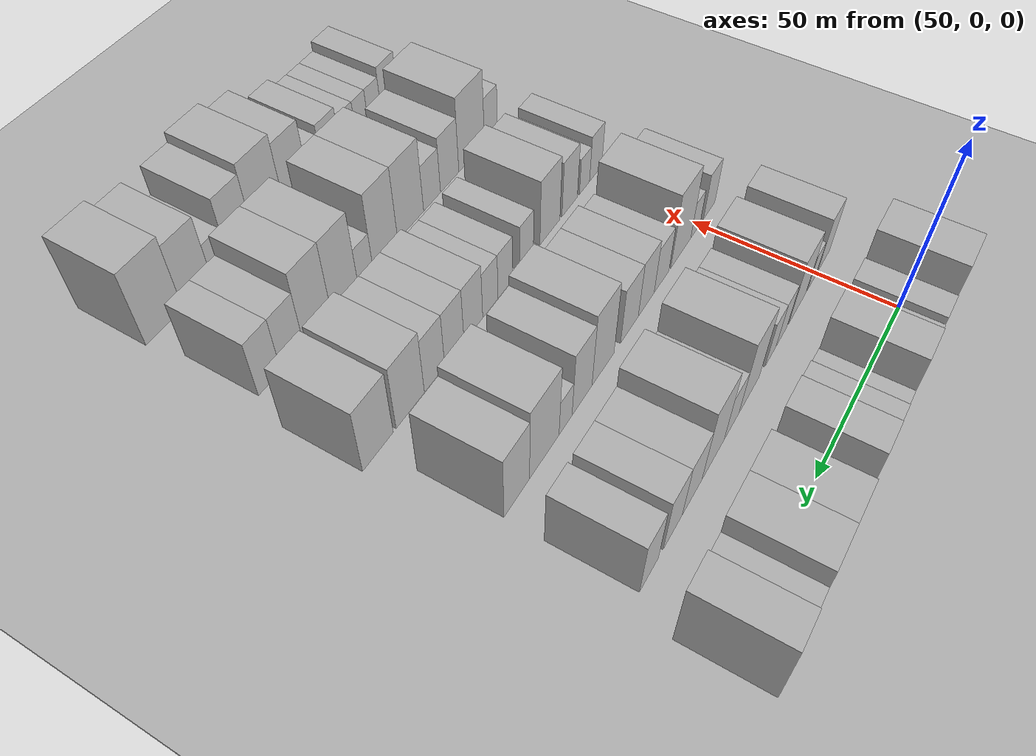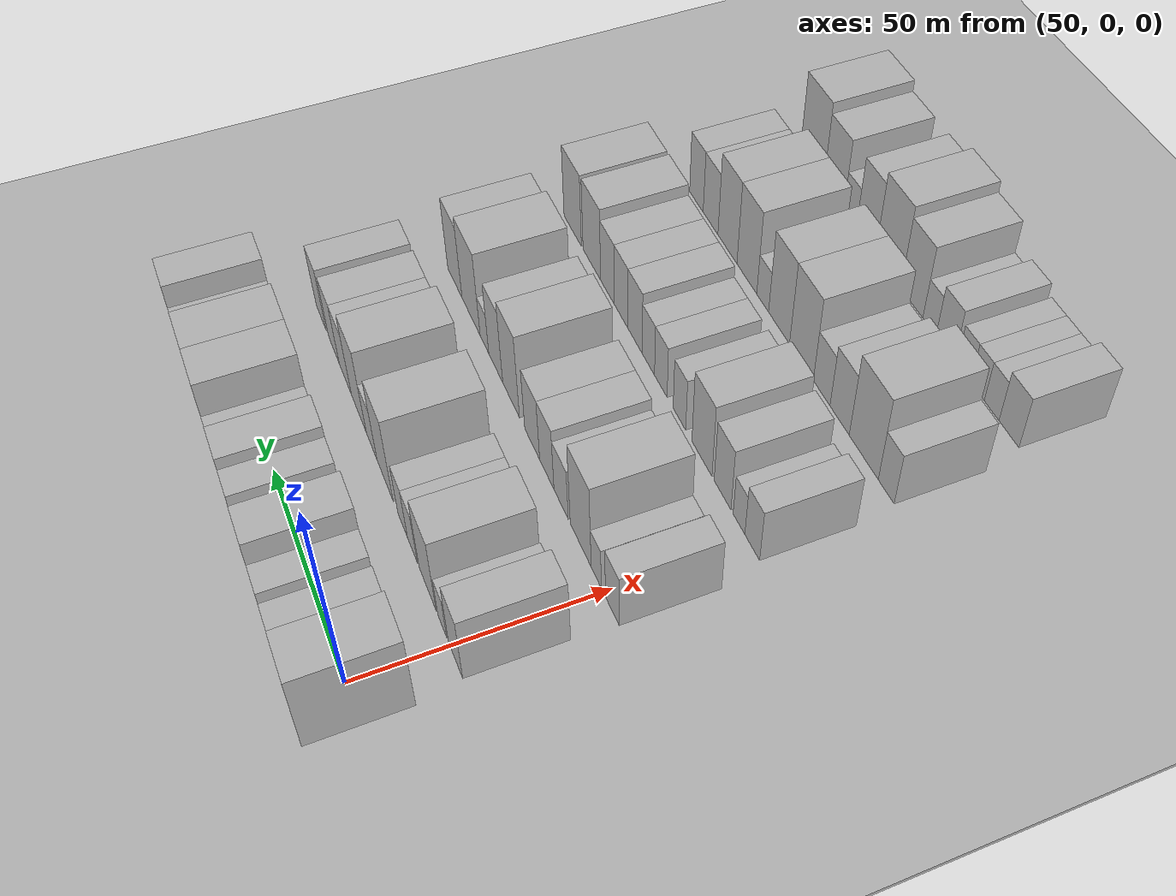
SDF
<sdf version="1.6">
 <world name="default">
  <include><name>ground_plane_1</name><uri>model://HANNAS_ground_plane</uri></include>
  <include>
   <name>ground_plane_2</name>
   <uri>model://HANNAS_ground_plane</uri>
   <pose>100 0 0  0 0 0</pose>
  </include>
  <model name="building_61">
   <static>1</static>
   <pose>50.0000 -3.9010 0 0.000000 0.000000 0.000000</pose>
   <link name="link">
    <pose>0 0 10.50 0 0 0</pose>
    <collision name="collision"><geometry><box><size>20.0000 10.4915 21.0000</size></box></geometry></collision>
    <visual name="visual">
     <cast_shadows>0</cast_shadows>
     <geometry><box><size>20.0000 10.4915 21.0000</size></box></geometry>
     <material>
      <script>
       <uri>model://HANNAS_wall/materials/scripts</uri>
       <uri>model://HANNAS_wall/materials/textures</uri>
       <name>vrc/HANNAS_wall</name>
      </script>
     </material>
    </visual>
   </link>
  </model>
  <model name="building_62">
   <static>1</static>
   <pose>50.0000 7.7243 0 0.000000 0.000000 0.000000</pose>
   <link name="link">
    <pose>0 0 7.50 0 0 0</pose>
    <collision name="collision"><geometry><box><size>20.0000 6.7590 15.0000</size></box></geometry></collision>
    <visual name="visual">
     <cast_shadows>0</cast_shadows>
     <geometry><box><size>20.0000 6.7590 15.0000</size></box></geometry>
     <material>
      <script>
       <uri>model://HANNAS_wall/materials/scripts</uri>
       <uri>model://HANNAS_wall/materials/textures</uri>
       <name>vrc/HANNAS_wall</name>
      </script>
     </material>
    </visual>
   </link>
  </model>
  <model name="building_63">
   <static>1</static>
   <pose>50.0000 16.3060 0 0.000000 0.000000 0.000000</pose>
   <link name="link">
    <pose>0 0 7.50 0 0 0</pose>
    <collision name="collision"><geometry><box><size>20.0000 6.4045 15.0000</size></box></geometry></collision>
    <visual name="visual">
     <cast_shadows>0</cast_shadows>
     <geometry><box><size>20.0000 6.4045 15.0000</size></box></geometry>
     <material>
      <script>
       <uri>model://HANNAS_wall/materials/scripts</uri>
       <uri>model://HANNAS_wall/materials/textures</uri>
       <name>vrc/HANNAS_wall</name>
      </script>
     </material>
    </visual>
   </link>
  </model>
  <model name="building_64">
   <static>1</static>
   <pose>50.0000 23.9120 0 0.000000 0.000000 0.000000</pose>
   <link name="link">
    <pose>0 0 10.50 0 0 0</pose>
    <collision name="collision"><geometry><box><size>20.0000 8.8074 21.0000</size></box></geometry></collision>
    <visual name="visual">
     <cast_shadows>0</cast_shadows>
     <geometry><box><size>20.0000 8.8074 21.0000</size></box></geometry>
     <material>
      <script>
       <uri>model://HANNAS_wall/materials/scripts</uri>
       <uri>model://HANNAS_wall/materials/textures</uri>
       <name>vrc/HANNAS_wall</name>
      </script>
     </material>
    </visual>
   </link>
  </model>
  <model name="building_65">
   <static>1</static>
   <pose>50.0000 32.2796 0 0.000000 0.000000 0.000000</pose>
   <link name="link">
    <pose>0 0 6.00 0 0 0</pose>
    <collision name="collision"><geometry><box><size>20.0000 5.9279 12.0000</size></box></geometry></collision>
    <visual name="visual">
     <cast_shadows>0</cast_shadows>
     <geometry><box><size>20.0000 5.9279 12.0000</size></box></geometry>
     <material>
      <script>
       <uri>model://HANNAS_wall/materials/scripts</uri>
       <uri>model://HANNAS_wall/materials/textures</uri>
       <name>vrc/HANNAS_wall</name>
      </script>
     </material>
    </visual>
   </link>
  </model>
  <model name="building_66">
   <static>1</static>
   <pose>50.0000 38.5099 0 0.000000 0.000000 0.000000</pose>
   <link name="link">
    <pose>0 0 7.50 0 0 0</pose>
    <collision name="collision"><geometry><box><size>20.0000 6.5327 15.0000</size></box></geometry></collision>
    <visual name="visual">
     <cast_shadows>0</cast_shadows>
     <geometry><box><size>20.0000 6.5327 15.0000</size></box></geometry>
     <material>
      <script>
       <uri>model://HANNAS_wall/materials/scripts</uri>
       <uri>model://HANNAS_wall/materials/textures</uri>
       <name>vrc/HANNAS_wall</name>
      </script>
     </material>
    </visual>
   </link>
  </model>
  <model name="building_67">
   <static>1</static>
   <pose>50.0000 45.8884 0 0.000000 0.000000 0.000000</pose>
   <link name="link">
    <pose>0 0 9.00 0 0 0</pose>
    <collision name="collision"><geometry><box><size>20.0000 8.2241 18.0000</size></box></geometry></collision>
    <visual name="visual">
     <cast_shadows>0</cast_shadows>
     <geometry><box><size>20.0000 8.2241 18.0000</size></box></geometry>
     <material>
      <script>
       <uri>model://HANNAS_wall/materials/scripts</uri>
       <uri>model://HANNAS_wall/materials/textures</uri>
       <name>vrc/HANNAS_wall</name>
      </script>
     </material>
    </visual>
   </link>
  </model>
  <model name="building_68">
   <static>1</static>
   <pose>50.0000 54.9763 0 0.000000 0.000000 0.000000</pose>
   <link name="link">
    <pose>0 0 6.00 0 0 0</pose>
    <collision name="collision"><geometry><box><size>20.0000 5.9517 12.0000</size></box></geometry></collision>
    <visual name="visual">
     <cast_shadows>0</cast_shadows>
     <geometry><box><size>20.0000 5.9517 12.0000</size></box></geometry>
     <material>
      <script>
       <uri>model://HANNAS_wall/materials/scripts</uri>
       <uri>model://HANNAS_wall/materials/textures</uri>
       <name>vrc/HANNAS_wall</name>
      </script>
     </material>
    </visual>
   </link>
  </model>
  <model name="building_69">
   <static>1</static>
   <pose>50.0000 62.8694 0 0.000000 0.000000 0.000000</pose>
   <link name="link">
    <pose>0 0 10.50 0 0 0</pose>
    <collision name="collision"><geometry><box><size>20.0000 9.8346 21.0000</size></box></geometry></collision>
    <visual name="visual">
     <cast_shadows>0</cast_shadows>
     <geometry><box><size>20.0000 9.8346 21.0000</size></box></geometry>
     <material>
      <script>
       <uri>model://HANNAS_wall/materials/scripts</uri>
       <uri>model://HANNAS_wall/materials/textures</uri>
       <name>vrc/HANNAS_wall</name>
      </script>
     </material>
    </visual>
   </link>
  </model>
  <model name="building_70">
   <static>1</static>
   <pose>50.0000 72.9231 0 0.000000 0.000000 0.000000</pose>
   <link name="link">
    <pose>0 0 10.50 0 0 0</pose>
    <collision name="collision"><geometry><box><size>20.0000 10.2727 21.0000</size></box></geometry></collision>
    <visual name="visual">
     <cast_shadows>0</cast_shadows>
     <geometry><box><size>20.0000 10.2727 21.0000</size></box></geometry>
     <material>
      <script>
       <uri>model://HANNAS_wall/materials/scripts</uri>
       <uri>model://HANNAS_wall/materials/textures</uri>
       <name>vrc/HANNAS_wall</name>
      </script>
     </material>
    </visual>
   </link>
  </model>
  <model name="building_71">
   <static>1</static>
   <pose>50.0000 81.6971 0 0.000000 0.000000 0.000000</pose>
   <link name="link">
    <pose>0 0 7.50 0 0 0</pose>
    <collision name="collision"><geometry><box><size>20.0000 7.2754 15.0000</size></box></geometry></collision>
    <visual name="visual">
     <cast_shadows>0</cast_shadows>
     <geometry><box><size>20.0000 7.2754 15.0000</size></box></geometry>
     <material>
      <script>
       <uri>model://HANNAS_wall/materials/scripts</uri>
       <uri>model://HANNAS_wall/materials/textures</uri>
       <name>vrc/HANNAS_wall</name>
      </script>
     </material>
    </visual>
   </link>
  </model>
  <model name="building_72">
   <static>1</static>
   <pose>50.0000 89.5781 0 0.000000 0.000000 0.000000</pose>
   <link name="link">
    <pose>0 0 10.50 0 0 0</pose>
    <collision name="collision"><geometry><box><size>20.0000 8.4865 21.0000</size></box></geometry></collision>
    <visual name="visual">
     <cast_shadows>0</cast_shadows>
     <geometry><box><size>20.0000 8.4865 21.0000</size></box></geometry>
     <material>
      <script>
       <uri>model://HANNAS_wall/materials/scripts</uri>
       <uri>model://HANNAS_wall/materials/textures</uri>
       <name>vrc/HANNAS_wall</name>
      </script>
     </material>
    </visual>
   </link>
  </model>
  <model name="building_178">
   <static>1</static>
   <pose>79.0000 -3.4270 0 0.000000 0.000000 0.000000</pose>
   <link name="link">
    <pose>0 0 9.00 0 0 0</pose>
    <collision name="collision"><geometry><box><size>20.0000 7.7500 18.0000</size></box></geometry></collision>
    <visual name="visual">
     <cast_shadows>0</cast_shadows>
     <geometry><box><size>20.0000 7.7500 18.0000</size></box></geometry>
     <material>
      <script>
       <uri>model://HANNAS_wall/materials/scripts</uri>
       <uri>model://HANNAS_wall/materials/textures</uri>
       <name>vrc/HANNAS_wall</name>
      </script>
     </material>
    </visual>
   </link>
  </model>
  <model name="building_179">
   <static>1</static>
   <pose>79.0000 3.9406 0 0.000000 0.000000 0.000000</pose>
   <link name="link">
    <pose>0 0 6.00 0 0 0</pose>
    <collision name="collision"><geometry><box><size>20.0000 4.9851 12.0000</size></box></geometry></collision>
    <visual name="visual">
     <cast_shadows>0</cast_shadows>
     <geometry><box><size>20.0000 4.9851 12.0000</size></box></geometry>
     <material>
      <script>
       <uri>model://HANNAS_wall/materials/scripts</uri>
       <uri>model://HANNAS_wall/materials/textures</uri>
       <name>vrc/HANNAS_wall</name>
      </script>
     </material>
    </visual>
   </link>
  </model>
  <model name="building_180">
   <static>1</static>
   <pose>79.0000 12.4589 0 0.000000 0.000000 0.000000</pose>
   <link name="link">
    <pose>0 0 10.50 0 0 0</pose>
    <collision name="collision"><geometry><box><size>20.0000 10.0514 21.0000</size></box></geometry></collision>
    <visual name="visual">
     <cast_shadows>0</cast_shadows>
     <geometry><box><size>20.0000 10.0514 21.0000</size></box></geometry>
     <material>
      <script>
       <uri>model://HANNAS_wall/materials/scripts</uri>
       <uri>model://HANNAS_wall/materials/textures</uri>
       <name>vrc/HANNAS_wall</name>
      </script>
     </material>
    </visual>
   </link>
  </model>
  <model name="building_181">
   <static>1</static>
   <pose>79.0000 21.5477 0 0.000000 0.000000 0.000000</pose>
   <link name="link">
    <pose>0 0 7.50 0 0 0</pose>
    <collision name="collision"><geometry><box><size>20.0000 6.1261 15.0000</size></box></geometry></collision>
    <visual name="visual">
     <cast_shadows>0</cast_shadows>
     <geometry><box><size>20.0000 6.1261 15.0000</size></box></geometry>
     <material>
      <script>
       <uri>model://HANNAS_wall/materials/scripts</uri>
       <uri>model://HANNAS_wall/materials/textures</uri>
       <name>vrc/HANNAS_wall</name>
      </script>
     </material>
    </visual>
   </link>
  </model>
  <model name="building_182">
   <static>1</static>
   <pose>79.0000 27.6333 0 0.000000 0.000000 0.000000</pose>
   <link name="link">
    <pose>0 0 7.50 0 0 0</pose>
    <collision name="collision"><geometry><box><size>20.0000 6.0452 15.0000</size></box></geometry></collision>
    <visual name="visual">
     <cast_shadows>0</cast_shadows>
     <geometry><box><size>20.0000 6.0452 15.0000</size></box></geometry>
     <material>
      <script>
       <uri>model://HANNAS_wall/materials/scripts</uri>
       <uri>model://HANNAS_wall/materials/textures</uri>
       <name>vrc/HANNAS_wall</name>
      </script>
     </material>
    </visual>
   </link>
  </model>
  <model name="building_183">
   <static>1</static>
   <pose>79.0000 38.9619 0 0.000000 0.000000 0.000000</pose>
   <link name="link">
    <pose>0 0 12.00 0 0 0</pose>
    <collision name="collision"><geometry><box><size>20.0000 10.6119 24.0000</size></box></geometry></collision>
    <visual name="visual">
     <cast_shadows>0</cast_shadows>
     <geometry><box><size>20.0000 10.6119 24.0000</size></box></geometry>
     <material>
      <script>
       <uri>model://HANNAS_wall/materials/scripts</uri>
       <uri>model://HANNAS_wall/materials/textures</uri>
       <name>vrc/HANNAS_wall</name>
      </script>
     </material>
    </visual>
   </link>
  </model>
  <model name="building_184">
   <static>1</static>
   <pose>79.0000 47.9116 0 0.000000 0.000000 0.000000</pose>
   <link name="link">
    <pose>0 0 7.50 0 0 0</pose>
    <collision name="collision"><geometry><box><size>20.0000 7.2875 15.0000</size></box></geometry></collision>
    <visual name="visual">
     <cast_shadows>0</cast_shadows>
     <geometry><box><size>20.0000 7.2875 15.0000</size></box></geometry>
     <material>
      <script>
       <uri>model://HANNAS_wall/materials/scripts</uri>
       <uri>model://HANNAS_wall/materials/textures</uri>
       <name>vrc/HANNAS_wall</name>
      </script>
     </material>
    </visual>
   </link>
  </model>
  <model name="building_185">
   <static>1</static>
   <pose>79.0000 56.8304 0 0.000000 0.000000 0.000000</pose>
   <link name="link">
    <pose>0 0 12.00 0 0 0</pose>
    <collision name="collision"><geometry><box><size>20.0000 10.5501 24.0000</size></box></geometry></collision>
    <visual name="visual">
     <cast_shadows>0</cast_shadows>
     <geometry><box><size>20.0000 10.5501 24.0000</size></box></geometry>
     <material>
      <script>
       <uri>model://HANNAS_wall/materials/scripts</uri>
       <uri>model://HANNAS_wall/materials/textures</uri>
       <name>vrc/HANNAS_wall</name>
      </script>
     </material>
    </visual>
   </link>
  </model>
  <model name="building_186">
   <static>1</static>
   <pose>79.0000 66.5549 0 0.000000 0.000000 0.000000</pose>
   <link name="link">
    <pose>0 0 9.00 0 0 0</pose>
    <collision name="collision"><geometry><box><size>20.0000 8.8989 18.0000</size></box></geometry></collision>
    <visual name="visual">
     <cast_shadows>0</cast_shadows>
     <geometry><box><size>20.0000 8.8989 18.0000</size></box></geometry>
     <material>
      <script>
       <uri>model://HANNAS_wall/materials/scripts</uri>
       <uri>model://HANNAS_wall/materials/textures</uri>
       <name>vrc/HANNAS_wall</name>
      </script>
     </material>
    </visual>
   </link>
  </model>
  <model name="building_187">
   <static>1</static>
   <pose>79.0000 75.1056 0 0.000000 0.000000 0.000000</pose>
   <link name="link">
    <pose>0 0 9.00 0 0 0</pose>
    <collision name="collision"><geometry><box><size>20.0000 8.2025 18.0000</size></box></geometry></collision>
    <visual name="visual">
     <cast_shadows>0</cast_shadows>
     <geometry><box><size>20.0000 8.2025 18.0000</size></box></geometry>
     <material>
      <script>
       <uri>model://HANNAS_wall/materials/scripts</uri>
       <uri>model://HANNAS_wall/materials/textures</uri>
       <name>vrc/HANNAS_wall</name>
      </script>
     </material>
    </visual>
   </link>
  </model>
  <model name="building_188">
   <static>1</static>
   <pose>79.0000 85.0935 0 0.000000 0.000000 0.000000</pose>
   <link name="link">
    <pose>0 0 9.00 0 0 0</pose>
    <collision name="collision"><geometry><box><size>20.0000 7.7735 18.0000</size></box></geometry></collision>
    <visual name="visual">
     <cast_shadows>0</cast_shadows>
     <geometry><box><size>20.0000 7.7735 18.0000</size></box></geometry>
     <material>
      <script>
       <uri>model://HANNAS_wall/materials/scripts</uri>
       <uri>model://HANNAS_wall/materials/textures</uri>
       <name>vrc/HANNAS_wall</name>
      </script>
     </material>
    </visual>
   </link>
  </model>
  <model name="building_296">
   <static>1</static>
   <pose>108.0000 -4.6606 0 0.000000 0.000000 0.000000</pose>
   <link name="link">
    <pose>0 0 7.50 0 0 0</pose>
    <collision name="collision"><geometry><box><size>20.0000 6.4673 15.0000</size></box></geometry></collision>
    <visual name="visual">
     <cast_shadows>0</cast_shadows>
     <geometry><box><size>20.0000 6.4673 15.0000</size></box></geometry>
     <material>
      <script>
       <uri>model://HANNAS_wall/materials/scripts</uri>
       <uri>model://HANNAS_wall/materials/textures</uri>
       <name>vrc/HANNAS_wall</name>
      </script>
     </material>
    </visual>
   </link>
  </model>
  <model name="building_297">
   <static>1</static>
   <pose>108.0000 3.0420 0 0.000000 0.000000 0.000000</pose>
   <link name="link">
    <pose>0 0 6.00 0 0 0</pose>
    <collision name="collision"><geometry><box><size>20.0000 4.9378 12.0000</size></box></geometry></collision>
    <visual name="visual">
     <cast_shadows>0</cast_shadows>
     <geometry><box><size>20.0000 4.9378 12.0000</size></box></geometry>
     <material>
      <script>
       <uri>model://HANNAS_wall/materials/scripts</uri>
       <uri>model://HANNAS_wall/materials/textures</uri>
       <name>vrc/HANNAS_wall</name>
      </script>
     </material>
    </visual>
   </link>
  </model>
  <model name="building_298">
   <static>1</static>
   <pose>108.0000 10.8004 0 0.000000 0.000000 0.000000</pose>
   <link name="link">
    <pose>0 0 12.00 0 0 0</pose>
    <collision name="collision"><geometry><box><size>20.0000 10.5790 24.0000</size></box></geometry></collision>
    <visual name="visual">
     <cast_shadows>0</cast_shadows>
     <geometry><box><size>20.0000 10.5790 24.0000</size></box></geometry>
     <material>
      <script>
       <uri>model://HANNAS_wall/materials/scripts</uri>
       <uri>model://HANNAS_wall/materials/textures</uri>
       <name>vrc/HANNAS_wall</name>
      </script>
     </material>
    </visual>
   </link>
  </model>
  <model name="building_299">
   <static>1</static>
   <pose>108.0000 20.8381 0 0.000000 0.000000 0.000000</pose>
   <link name="link">
    <pose>0 0 7.50 0 0 0</pose>
    <collision name="collision"><geometry><box><size>20.0000 7.4964 15.0000</size></box></geometry></collision>
    <visual name="visual">
     <cast_shadows>0</cast_shadows>
     <geometry><box><size>20.0000 7.4964 15.0000</size></box></geometry>
     <material>
      <script>
       <uri>model://HANNAS_wall/materials/scripts</uri>
       <uri>model://HANNAS_wall/materials/textures</uri>
       <name>vrc/HANNAS_wall</name>
      </script>
     </material>
    </visual>
   </link>
  </model>
  <model name="building_300">
   <static>1</static>
   <pose>108.0000 28.4710 0 0.000000 0.000000 0.000000</pose>
   <link name="link">
    <pose>0 0 9.00 0 0 0</pose>
    <collision name="collision"><geometry><box><size>20.0000 7.7693 18.0000</size></box></geometry></collision>
    <visual name="visual">
     <cast_shadows>0</cast_shadows>
     <geometry><box><size>20.0000 7.7693 18.0000</size></box></geometry>
     <material>
      <script>
       <uri>model://HANNAS_wall/materials/scripts</uri>
       <uri>model://HANNAS_wall/materials/textures</uri>
       <name>vrc/HANNAS_wall</name>
      </script>
     </material>
    </visual>
   </link>
  </model>
  <model name="building_301">
   <static>1</static>
   <pose>108.0000 36.5383 0 0.000000 0.000000 0.000000</pose>
   <link name="link">
    <pose>0 0 9.00 0 0 0</pose>
    <collision name="collision"><geometry><box><size>20.0000 8.3653 18.0000</size></box></geometry></collision>
    <visual name="visual">
     <cast_shadows>0</cast_shadows>
     <geometry><box><size>20.0000 8.3653 18.0000</size></box></geometry>
     <material>
      <script>
       <uri>model://HANNAS_wall/materials/scripts</uri>
       <uri>model://HANNAS_wall/materials/textures</uri>
       <name>vrc/HANNAS_wall</name>
      </script>
     </material>
    </visual>
   </link>
  </model>
  <model name="building_302">
   <static>1</static>
   <pose>108.0000 48.6522 0 0.000000 0.000000 0.000000</pose>
   <link name="link">
    <pose>0 0 12.00 0 0 0</pose>
    <collision name="collision"><geometry><box><size>20.0000 9.8624 24.0000</size></box></geometry></collision>
    <visual name="visual">
     <cast_shadows>0</cast_shadows>
     <geometry><box><size>20.0000 9.8624 24.0000</size></box></geometry>
     <material>
      <script>
       <uri>model://HANNAS_wall/materials/scripts</uri>
       <uri>model://HANNAS_wall/materials/textures</uri>
       <name>vrc/HANNAS_wall</name>
      </script>
     </material>
    </visual>
   </link>
  </model>
  <model name="building_303">
   <static>1</static>
   <pose>108.0000 57.8379 0 0.000000 0.000000 0.000000</pose>
   <link name="link">
    <pose>0 0 10.50 0 0 0</pose>
    <collision name="collision"><geometry><box><size>20.0000 8.5090 21.0000</size></box></geometry></collision>
    <visual name="visual">
     <cast_shadows>0</cast_shadows>
     <geometry><box><size>20.0000 8.5090 21.0000</size></box></geometry>
     <material>
      <script>
       <uri>model://HANNAS_wall/materials/scripts</uri>
       <uri>model://HANNAS_wall/materials/textures</uri>
       <name>vrc/HANNAS_wall</name>
      </script>
     </material>
    </visual>
   </link>
  </model>
  <model name="building_304">
   <static>1</static>
   <pose>108.0000 64.7848 0 0.000000 0.000000 0.000000</pose>
   <link name="link">
    <pose>0 0 6.00 0 0 0</pose>
    <collision name="collision"><geometry><box><size>20.0000 5.3848 12.0000</size></box></geometry></collision>
    <visual name="visual">
     <cast_shadows>0</cast_shadows>
     <geometry><box><size>20.0000 5.3848 12.0000</size></box></geometry>
     <material>
      <script>
       <uri>model://HANNAS_wall/materials/scripts</uri>
       <uri>model://HANNAS_wall/materials/textures</uri>
       <name>vrc/HANNAS_wall</name>
      </script>
     </material>
    </visual>
   </link>
  </model>
  <model name="building_305">
   <static>1</static>
   <pose>108.0000 73.3224 0 0.000000 0.000000 0.000000</pose>
   <link name="link">
    <pose>0 0 12.00 0 0 0</pose>
    <collision name="collision"><geometry><box><size>20.0000 11.6905 24.0000</size></box></geometry></collision>
    <visual name="visual">
     <cast_shadows>0</cast_shadows>
     <geometry><box><size>20.0000 11.6905 24.0000</size></box></geometry>
     <material>
      <script>
       <uri>model://HANNAS_wall/materials/scripts</uri>
       <uri>model://HANNAS_wall/materials/textures</uri>
       <name>vrc/HANNAS_wall</name>
      </script>
     </material>
    </visual>
   </link>
  </model>
  <model name="building_306">
   <static>1</static>
   <pose>108.0000 83.9621 0 0.000000 0.000000 0.000000</pose>
   <link name="link">
    <pose>0 0 10.50 0 0 0</pose>
    <collision name="collision"><geometry><box><size>20.0000 9.5888 21.0000</size></box></geometry></collision>
    <visual name="visual">
     <cast_shadows>0</cast_shadows>
     <geometry><box><size>20.0000 9.5888 21.0000</size></box></geometry>
     <material>
      <script>
       <uri>model://HANNAS_wall/materials/scripts</uri>
       <uri>model://HANNAS_wall/materials/textures</uri>
       <name>vrc/HANNAS_wall</name>
      </script>
     </material>
    </visual>
   </link>
  </model>
  <model name="building_409">
   <static>1</static>
   <pose>137.0000 -1.8478 0 0.000000 0.000000 0.000000</pose>
   <link name="link">
    <pose>0 0 7.50 0 0 0</pose>
    <collision name="collision"><geometry><box><size>20.0000 6.2753 15.0000</size></box></geometry></collision>
    <visual name="visual">
     <cast_shadows>0</cast_shadows>
     <geometry><box><size>20.0000 6.2753 15.0000</size></box></geometry>
     <material>
      <script>
       <uri>model://HANNAS_wall/materials/scripts</uri>
       <uri>model://HANNAS_wall/materials/textures</uri>
       <name>vrc/HANNAS_wall</name>
      </script>
     </material>
    </visual>
   </link>
  </model>
  <model name="building_410">
   <static>1</static>
   <pose>137.0000 3.8283 0 0.000000 0.000000 0.000000</pose>
   <link name="link">
    <pose>0 0 6.00 0 0 0</pose>
    <collision name="collision"><geometry><box><size>20.0000 5.0770 12.0000</size></box></geometry></collision>
    <visual name="visual">
     <cast_shadows>0</cast_shadows>
     <geometry><box><size>20.0000 5.0770 12.0000</size></box></geometry>
     <material>
      <script>
       <uri>model://HANNAS_wall/materials/scripts</uri>
       <uri>model://HANNAS_wall/materials/textures</uri>
       <name>vrc/HANNAS_wall</name>
      </script>
     </material>
    </visual>
   </link>
  </model>
  <model name="building_411">
   <static>1</static>
   <pose>137.0000 11.1254 0 0.000000 0.000000 0.000000</pose>
   <link name="link">
    <pose>0 0 9.00 0 0 0</pose>
    <collision name="collision"><geometry><box><size>20.0000 7.5172 18.0000</size></box></geometry></collision>
    <visual name="visual">
     <cast_shadows>0</cast_shadows>
     <geometry><box><size>20.0000 7.5172 18.0000</size></box></geometry>
     <material>
      <script>
       <uri>model://HANNAS_wall/materials/scripts</uri>
       <uri>model://HANNAS_wall/materials/textures</uri>
       <name>vrc/HANNAS_wall</name>
      </script>
     </material>
    </visual>
   </link>
  </model>
  <model name="building_412">
   <static>1</static>
   <pose>137.0000 20.5613 0 0.000000 0.000000 0.000000</pose>
   <link name="link">
    <pose>0 0 10.50 0 0 0</pose>
    <collision name="collision"><geometry><box><size>20.0000 9.3547 21.0000</size></box></geometry></collision>
    <visual name="visual">
     <cast_shadows>0</cast_shadows>
     <geometry><box><size>20.0000 9.3547 21.0000</size></box></geometry>
     <material>
      <script>
       <uri>model://HANNAS_wall/materials/scripts</uri>
       <uri>model://HANNAS_wall/materials/textures</uri>
       <name>vrc/HANNAS_wall</name>
      </script>
     </material>
    </visual>
   </link>
  </model>
  <model name="building_413">
   <static>1</static>
   <pose>137.0000 31.2797 0 0.000000 0.000000 0.000000</pose>
   <link name="link">
    <pose>0 0 7.50 0 0 0</pose>
    <collision name="collision"><geometry><box><size>20.0000 6.0819 15.0000</size></box></geometry></collision>
    <visual name="visual">
     <cast_shadows>0</cast_shadows>
     <geometry><box><size>20.0000 6.0819 15.0000</size></box></geometry>
     <material>
      <script>
       <uri>model://HANNAS_wall/materials/scripts</uri>
       <uri>model://HANNAS_wall/materials/textures</uri>
       <name>vrc/HANNAS_wall</name>
      </script>
     </material>
    </visual>
   </link>
  </model>
  <model name="building_414">
   <static>1</static>
   <pose>137.0000 40.4959 0 0.000000 0.000000 0.000000</pose>
   <link name="link">
    <pose>0 0 7.50 0 0 0</pose>
    <collision name="collision"><geometry><box><size>20.0000 6.3505 15.0000</size></box></geometry></collision>
    <visual name="visual">
     <cast_shadows>0</cast_shadows>
     <geometry><box><size>20.0000 6.3505 15.0000</size></box></geometry>
     <material>
      <script>
       <uri>model://HANNAS_wall/materials/scripts</uri>
       <uri>model://HANNAS_wall/materials/textures</uri>
       <name>vrc/HANNAS_wall</name>
      </script>
     </material>
    </visual>
   </link>
  </model>
  <model name="building_415">
   <static>1</static>
   <pose>137.0000 46.8543 0 0.000000 0.000000 0.000000</pose>
   <link name="link">
    <pose>0 0 7.50 0 0 0</pose>
    <collision name="collision"><geometry><box><size>20.0000 6.3665 15.0000</size></box></geometry></collision>
    <visual name="visual">
     <cast_shadows>0</cast_shadows>
     <geometry><box><size>20.0000 6.3665 15.0000</size></box></geometry>
     <material>
      <script>
       <uri>model://HANNAS_wall/materials/scripts</uri>
       <uri>model://HANNAS_wall/materials/textures</uri>
       <name>vrc/HANNAS_wall</name>
      </script>
     </material>
    </visual>
   </link>
  </model>
  <model name="building_416">
   <static>1</static>
   <pose>137.0000 53.8224 0 0.000000 0.000000 0.000000</pose>
   <link name="link">
    <pose>0 0 9.00 0 0 0</pose>
    <collision name="collision"><geometry><box><size>20.0000 7.5697 18.0000</size></box></geometry></collision>
    <visual name="visual">
     <cast_shadows>0</cast_shadows>
     <geometry><box><size>20.0000 7.5697 18.0000</size></box></geometry>
     <material>
      <script>
       <uri>model://HANNAS_wall/materials/scripts</uri>
       <uri>model://HANNAS_wall/materials/textures</uri>
       <name>vrc/HANNAS_wall</name>
      </script>
     </material>
    </visual>
   </link>
  </model>
  <model name="building_417">
   <static>1</static>
   <pose>137.0000 61.3612 0 0.000000 0.000000 0.000000</pose>
   <link name="link">
    <pose>0 0 9.00 0 0 0</pose>
    <collision name="collision"><geometry><box><size>20.0000 7.5079 18.0000</size></box></geometry></collision>
    <visual name="visual">
     <cast_shadows>0</cast_shadows>
     <geometry><box><size>20.0000 7.5079 18.0000</size></box></geometry>
     <material>
      <script>
       <uri>model://HANNAS_wall/materials/scripts</uri>
       <uri>model://HANNAS_wall/materials/textures</uri>
       <name>vrc/HANNAS_wall</name>
      </script>
     </material>
    </visual>
   </link>
  </model>
  <model name="building_418">
   <static>1</static>
   <pose>137.0000 68.9557 0 0.000000 0.000000 0.000000</pose>
   <link name="link">
    <pose>0 0 9.00 0 0 0</pose>
    <collision name="collision"><geometry><box><size>20.0000 7.6810 18.0000</size></box></geometry></collision>
    <visual name="visual">
     <cast_shadows>0</cast_shadows>
     <geometry><box><size>20.0000 7.6810 18.0000</size></box></geometry>
     <material>
      <script>
       <uri>model://HANNAS_wall/materials/scripts</uri>
       <uri>model://HANNAS_wall/materials/textures</uri>
       <name>vrc/HANNAS_wall</name>
      </script>
     </material>
    </visual>
   </link>
  </model>
  <model name="building_419">
   <static>1</static>
   <pose>137.0000 77.9057 0 0.000000 0.000000 0.000000</pose>
   <link name="link">
    <pose>0 0 10.50 0 0 0</pose>
    <collision name="collision"><geometry><box><size>20.0000 10.2191 21.0000</size></box></geometry></collision>
    <visual name="visual">
     <cast_shadows>0</cast_shadows>
     <geometry><box><size>20.0000 10.2191 21.0000</size></box></geometry>
     <material>
      <script>
       <uri>model://HANNAS_wall/materials/scripts</uri>
       <uri>model://HANNAS_wall/materials/textures</uri>
       <name>vrc/HANNAS_wall</name>
      </script>
     </material>
    </visual>
   </link>
  </model>
  <model name="building_420">
   <static>1</static>
   <pose>137.0000 89.2529 0 0.000000 0.000000 0.000000</pose>
   <link name="link">
    <pose>0 0 10.50 0 0 0</pose>
    <collision name="collision"><geometry><box><size>20.0000 10.4754 21.0000</size></box></geometry></collision>
    <visual name="visual">
     <cast_shadows>0</cast_shadows>
     <geometry><box><size>20.0000 10.4754 21.0000</size></box></geometry>
     <material>
      <script>
       <uri>model://HANNAS_wall/materials/scripts</uri>
       <uri>model://HANNAS_wall/materials/textures</uri>
       <name>vrc/HANNAS_wall</name>
      </script>
     </material>
    </visual>
   </link>
  </model>
  <model name="building_522">
   <static>1</static>
   <pose>166.0000 -0.1412 0 0.000000 0.000000 0.000000</pose>
   <link name="link">
    <pose>0 0 7.50 0 0 0</pose>
    <collision name="collision"><geometry><box><size>20.0000 6.2050 15.0000</size></box></geometry></collision>
    <visual name="visual">
     <cast_shadows>0</cast_shadows>
     <geometry><box><size>20.0000 6.2050 15.0000</size></box></geometry>
     <material>
      <script>
       <uri>model://HANNAS_wall/materials/scripts</uri>
       <uri>model://HANNAS_wall/materials/textures</uri>
       <name>vrc/HANNAS_wall</name>
      </script>
     </material>
    </visual>
   </link>
  </model>
  <model name="building_523">
   <static>1</static>
   <pose>166.0000 8.8493 0 0.000000 0.000000 0.000000</pose>
   <link name="link">
    <pose>0 0 12.00 0 0 0</pose>
    <collision name="collision"><geometry><box><size>20.0000 11.7760 24.0000</size></box></geometry></collision>
    <visual name="visual">
     <cast_shadows>0</cast_shadows>
     <geometry><box><size>20.0000 11.7760 24.0000</size></box></geometry>
     <material>
      <script>
       <uri>model://HANNAS_wall/materials/scripts</uri>
       <uri>model://HANNAS_wall/materials/textures</uri>
       <name>vrc/HANNAS_wall</name>
      </script>
     </material>
    </visual>
   </link>
  </model>
  <model name="building_524">
   <static>1</static>
   <pose>166.0000 18.7882 0 0.000000 0.000000 0.000000</pose>
   <link name="link">
    <pose>0 0 9.00 0 0 0</pose>
    <collision name="collision"><geometry><box><size>20.0000 8.1018 18.0000</size></box></geometry></collision>
    <visual name="visual">
     <cast_shadows>0</cast_shadows>
     <geometry><box><size>20.0000 8.1018 18.0000</size></box></geometry>
     <material>
      <script>
       <uri>model://HANNAS_wall/materials/scripts</uri>
       <uri>model://HANNAS_wall/materials/textures</uri>
       <name>vrc/HANNAS_wall</name>
      </script>
     </material>
    </visual>
   </link>
  </model>
  <model name="building_525">
   <static>1</static>
   <pose>166.0000 26.4673 0 0.000000 0.000000 0.000000</pose>
   <link name="link">
    <pose>0 0 7.50 0 0 0</pose>
    <collision name="collision"><geometry><box><size>20.0000 7.2564 15.0000</size></box></geometry></collision>
    <visual name="visual">
     <cast_shadows>0</cast_shadows>
     <geometry><box><size>20.0000 7.2564 15.0000</size></box></geometry>
     <material>
      <script>
       <uri>model://HANNAS_wall/materials/scripts</uri>
       <uri>model://HANNAS_wall/materials/textures</uri>
       <name>vrc/HANNAS_wall</name>
      </script>
     </material>
    </visual>
   </link>
  </model>
  <model name="building_526">
   <static>1</static>
   <pose>166.0000 35.4468 0 0.000000 0.000000 0.000000</pose>
   <link name="link">
    <pose>0 0 12.00 0 0 0</pose>
    <collision name="collision"><geometry><box><size>20.0000 10.7025 24.0000</size></box></geometry></collision>
    <visual name="visual">
     <cast_shadows>0</cast_shadows>
     <geometry><box><size>20.0000 10.7025 24.0000</size></box></geometry>
     <material>
      <script>
       <uri>model://HANNAS_wall/materials/scripts</uri>
       <uri>model://HANNAS_wall/materials/textures</uri>
       <name>vrc/HANNAS_wall</name>
      </script>
     </material>
    </visual>
   </link>
  </model>
  <model name="building_527">
   <static>1</static>
   <pose>166.0000 45.7075 0 0.000000 0.000000 0.000000</pose>
   <link name="link">
    <pose>0 0 12.00 0 0 0</pose>
    <collision name="collision"><geometry><box><size>20.0000 9.8189 24.0000</size></box></geometry></collision>
    <visual name="visual">
     <cast_shadows>0</cast_shadows>
     <geometry><box><size>20.0000 9.8189 24.0000</size></box></geometry>
     <material>
      <script>
       <uri>model://HANNAS_wall/materials/scripts</uri>
       <uri>model://HANNAS_wall/materials/textures</uri>
       <name>vrc/HANNAS_wall</name>
      </script>
     </material>
    </visual>
   </link>
  </model>
  <model name="building_528">
   <static>1</static>
   <pose>166.0000 53.4572 0 0.000000 0.000000 0.000000</pose>
   <link name="link">
    <pose>0 0 6.00 0 0 0</pose>
    <collision name="collision"><geometry><box><size>20.0000 5.6805 12.0000</size></box></geometry></collision>
    <visual name="visual">
     <cast_shadows>0</cast_shadows>
     <geometry><box><size>20.0000 5.6805 12.0000</size></box></geometry>
     <material>
      <script>
       <uri>model://HANNAS_wall/materials/scripts</uri>
       <uri>model://HANNAS_wall/materials/textures</uri>
       <name>vrc/HANNAS_wall</name>
      </script>
     </material>
    </visual>
   </link>
  </model>
  <model name="building_529">
   <static>1</static>
   <pose>166.0000 61.1979 0 0.000000 0.000000 0.000000</pose>
   <link name="link">
    <pose>0 0 12.00 0 0 0</pose>
    <collision name="collision"><geometry><box><size>20.0000 9.8009 24.0000</size></box></geometry></collision>
    <visual name="visual">
     <cast_shadows>0</cast_shadows>
     <geometry><box><size>20.0000 9.8009 24.0000</size></box></geometry>
     <material>
      <script>
       <uri>model://HANNAS_wall/materials/scripts</uri>
       <uri>model://HANNAS_wall/materials/textures</uri>
       <name>vrc/HANNAS_wall</name>
      </script>
     </material>
    </visual>
   </link>
  </model>
  <model name="building_530">
   <static>1</static>
   <pose>166.0000 70.9834 0 0.000000 0.000000 0.000000</pose>
   <link name="link">
    <pose>0 0 12.00 0 0 0</pose>
    <collision name="collision"><geometry><box><size>20.0000 9.7701 24.0000</size></box></geometry></collision>
    <visual name="visual">
     <cast_shadows>0</cast_shadows>
     <geometry><box><size>20.0000 9.7701 24.0000</size></box></geometry>
     <material>
      <script>
       <uri>model://HANNAS_wall/materials/scripts</uri>
       <uri>model://HANNAS_wall/materials/textures</uri>
       <name>vrc/HANNAS_wall</name>
      </script>
     </material>
    </visual>
   </link>
  </model>
  <model name="building_531">
   <static>1</static>
   <pose>166.0000 79.7733 0 0.000000 0.000000 0.000000</pose>
   <link name="link">
    <pose>0 0 9.00 0 0 0</pose>
    <collision name="collision"><geometry><box><size>20.0000 7.8098 18.0000</size></box></geometry></collision>
    <visual name="visual">
     <cast_shadows>0</cast_shadows>
     <geometry><box><size>20.0000 7.8098 18.0000</size></box></geometry>
     <material>
      <script>
       <uri>model://HANNAS_wall/materials/scripts</uri>
       <uri>model://HANNAS_wall/materials/textures</uri>
       <name>vrc/HANNAS_wall</name>
      </script>
     </material>
    </visual>
   </link>
  </model>
  <model name="building_532">
   <static>1</static>
   <pose>166.0000 87.3550 0 0.000000 0.000000 0.000000</pose>
   <link name="link">
    <pose>0 0 9.00 0 0 0</pose>
    <collision name="collision"><geometry><box><size>20.0000 7.3536 18.0000</size></box></geometry></collision>
    <visual name="visual">
     <cast_shadows>0</cast_shadows>
     <geometry><box><size>20.0000 7.3536 18.0000</size></box></geometry>
     <material>
      <script>
       <uri>model://HANNAS_wall/materials/scripts</uri>
       <uri>model://HANNAS_wall/materials/textures</uri>
       <name>vrc/HANNAS_wall</name>
      </script>
     </material>
    </visual>
   </link>
  </model>
  <model name="building_638">
   <static>1</static>
   <pose>195.0000 2.9607 0 0.000000 0.000000 0.000000</pose>
   <link name="link">
    <pose>0 0 7.50 0 0 0</pose>
    <collision name="collision"><geometry><box><size>20.0000 7.3193 15.0000</size></box></geometry></collision>
    <visual name="visual">
     <cast_shadows>0</cast_shadows>
     <geometry><box><size>20.0000 7.3193 15.0000</size></box></geometry>
     <material>
      <script>
       <uri>model://HANNAS_wall/materials/scripts</uri>
       <uri>model://HANNAS_wall/materials/textures</uri>
       <name>vrc/HANNAS_wall</name>
      </script>
     </material>
    </visual>
   </link>
  </model>
  <model name="building_639">
   <static>1</static>
   <pose>195.0000 9.3924 0 0.000000 0.000000 0.000000</pose>
   <link name="link">
    <pose>0 0 6.00 0 0 0</pose>
    <collision name="collision"><geometry><box><size>20.0000 5.5440 12.0000</size></box></geometry></collision>
    <visual name="visual">
     <cast_shadows>0</cast_shadows>
     <geometry><box><size>20.0000 5.5440 12.0000</size></box></geometry>
     <material>
      <script>
       <uri>model://HANNAS_wall/materials/scripts</uri>
       <uri>model://HANNAS_wall/materials/textures</uri>
       <name>vrc/HANNAS_wall</name>
      </script>
     </material>
    </visual>
   </link>
  </model>
  <model name="building_640">
   <static>1</static>
   <pose>195.0000 14.7725 0 0.000000 0.000000 0.000000</pose>
   <link name="link">
    <pose>0 0 6.00 0 0 0</pose>
    <collision name="collision"><geometry><box><size>20.0000 5.2163 12.0000</size></box></geometry></collision>
    <visual name="visual">
     <cast_shadows>0</cast_shadows>
     <geometry><box><size>20.0000 5.2163 12.0000</size></box></geometry>
     <material>
      <script>
       <uri>model://HANNAS_wall/materials/scripts</uri>
       <uri>model://HANNAS_wall/materials/textures</uri>
       <name>vrc/HANNAS_wall</name>
      </script>
     </material>
    </visual>
   </link>
  </model>
  <model name="building_641">
   <static>1</static>
   <pose>195.0000 20.1072 0 0.000000 0.000000 0.000000</pose>
   <link name="link">
    <pose>0 0 6.00 0 0 0</pose>
    <collision name="collision"><geometry><box><size>20.0000 5.4530 12.0000</size></box></geometry></collision>
    <visual name="visual">
     <cast_shadows>0</cast_shadows>
     <geometry><box><size>20.0000 5.4530 12.0000</size></box></geometry>
     <material>
      <script>
       <uri>model://HANNAS_wall/materials/scripts</uri>
       <uri>model://HANNAS_wall/materials/textures</uri>
       <name>vrc/HANNAS_wall</name>
      </script>
     </material>
    </visual>
   </link>
  </model>
  <model name="building_642">
   <static>1</static>
   <pose>195.0000 27.5264 0 0.000000 0.000000 0.000000</pose>
   <link name="link">
    <pose>0 0 7.50 0 0 0</pose>
    <collision name="collision"><geometry><box><size>20.0000 7.3855 15.0000</size></box></geometry></collision>
    <visual name="visual">
     <cast_shadows>0</cast_shadows>
     <geometry><box><size>20.0000 7.3855 15.0000</size></box></geometry>
     <material>
      <script>
       <uri>model://HANNAS_wall/materials/scripts</uri>
       <uri>model://HANNAS_wall/materials/textures</uri>
       <name>vrc/HANNAS_wall</name>
      </script>
     </material>
    </visual>
   </link>
  </model>
  <model name="building_643">
   <static>1</static>
   <pose>195.0000 33.9291 0 0.000000 0.000000 0.000000</pose>
   <link name="link">
    <pose>0 0 6.00 0 0 0</pose>
    <collision name="collision"><geometry><box><size>20.0000 5.4199 12.0000</size></box></geometry></collision>
    <visual name="visual">
     <cast_shadows>0</cast_shadows>
     <geometry><box><size>20.0000 5.4199 12.0000</size></box></geometry>
     <material>
      <script>
       <uri>model://HANNAS_wall/materials/scripts</uri>
       <uri>model://HANNAS_wall/materials/textures</uri>
       <name>vrc/HANNAS_wall</name>
      </script>
     </material>
    </visual>
   </link>
  </model>
  <model name="building_644">
   <static>1</static>
   <pose>195.0000 41.3284 0 0.000000 0.000000 0.000000</pose>
   <link name="link">
    <pose>0 0 10.50 0 0 0</pose>
    <collision name="collision"><geometry><box><size>20.0000 9.3786 21.0000</size></box></geometry></collision>
    <visual name="visual">
     <cast_shadows>0</cast_shadows>
     <geometry><box><size>20.0000 9.3786 21.0000</size></box></geometry>
     <material>
      <script>
       <uri>model://HANNAS_wall/materials/scripts</uri>
       <uri>model://HANNAS_wall/materials/textures</uri>
       <name>vrc/HANNAS_wall</name>
      </script>
     </material>
    </visual>
   </link>
  </model>
  <model name="building_645">
   <static>1</static>
   <pose>195.0000 51.6151 0 0.000000 0.000000 0.000000</pose>
   <link name="link">
    <pose>0 0 12.00 0 0 0</pose>
    <collision name="collision"><geometry><box><size>20.0000 11.1948 24.0000</size></box></geometry></collision>
    <visual name="visual">
     <cast_shadows>0</cast_shadows>
     <geometry><box><size>20.0000 11.1948 24.0000</size></box></geometry>
     <material>
      <script>
       <uri>model://HANNAS_wall/materials/scripts</uri>
       <uri>model://HANNAS_wall/materials/textures</uri>
       <name>vrc/HANNAS_wall</name>
      </script>
     </material>
    </visual>
   </link>
  </model>
  <model name="building_646">
   <static>1</static>
   <pose>195.0000 61.6084 0 0.000000 0.000000 0.000000</pose>
   <link name="link">
    <pose>0 0 10.50 0 0 0</pose>
    <collision name="collision"><geometry><box><size>20.0000 8.7918 21.0000</size></box></geometry></collision>
    <visual name="visual">
     <cast_shadows>0</cast_shadows>
     <geometry><box><size>20.0000 8.7918 21.0000</size></box></geometry>
     <material>
      <script>
       <uri>model://HANNAS_wall/materials/scripts</uri>
       <uri>model://HANNAS_wall/materials/textures</uri>
       <name>vrc/HANNAS_wall</name>
      </script>
     </material>
    </visual>
   </link>
  </model>
  <model name="building_647">
   <static>1</static>
   <pose>195.0000 68.9760 0 0.000000 0.000000 0.000000</pose>
   <link name="link">
    <pose>0 0 6.00 0 0 0</pose>
    <collision name="collision"><geometry><box><size>20.0000 5.9436 12.0000</size></box></geometry></collision>
    <visual name="visual">
     <cast_shadows>0</cast_shadows>
     <geometry><box><size>20.0000 5.9436 12.0000</size></box></geometry>
     <material>
      <script>
       <uri>model://HANNAS_wall/materials/scripts</uri>
       <uri>model://HANNAS_wall/materials/textures</uri>
       <name>vrc/HANNAS_wall</name>
      </script>
     </material>
    </visual>
   </link>
  </model>
  <model name="building_648">
   <static>1</static>
   <pose>195.0000 76.7643 0 0.000000 0.000000 0.000000</pose>
   <link name="link">
    <pose>0 0 10.50 0 0 0</pose>
    <collision name="collision"><geometry><box><size>20.0000 9.6329 21.0000</size></box></geometry></collision>
    <visual name="visual">
     <cast_shadows>0</cast_shadows>
     <geometry><box><size>20.0000 9.6329 21.0000</size></box></geometry>
     <material>
      <script>
       <uri>model://HANNAS_wall/materials/scripts</uri>
       <uri>model://HANNAS_wall/materials/textures</uri>
       <name>vrc/HANNAS_wall</name>
      </script>
     </material>
    </visual>
   </link>
  </model>
  <model name="building_649">
   <static>1</static>
   <pose>195.0000 87.4484 0 0.000000 0.000000 0.000000</pose>
   <link name="link">
    <pose>0 0 12.00 0 0 0</pose>
    <collision name="collision"><geometry><box><size>20.0000 11.7355 24.0000</size></box></geometry></collision>
    <visual name="visual">
     <cast_shadows>0</cast_shadows>
     <geometry><box><size>20.0000 11.7355 24.0000</size></box></geometry>
     <material>
      <script>
       <uri>model://HANNAS_wall/materials/scripts</uri>
       <uri>model://HANNAS_wall/materials/textures</uri>
       <name>vrc/HANNAS_wall</name>
      </script>
     </material>
    </visual>
   </link>
  </model>
 </world>
</sdf>
